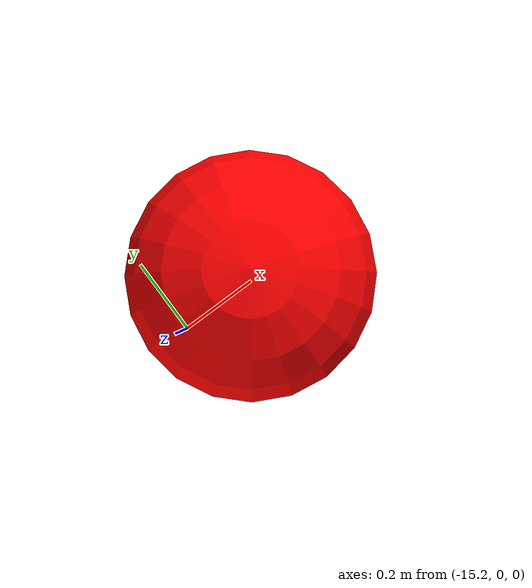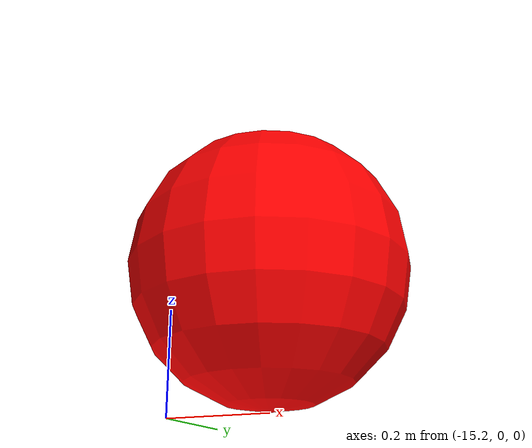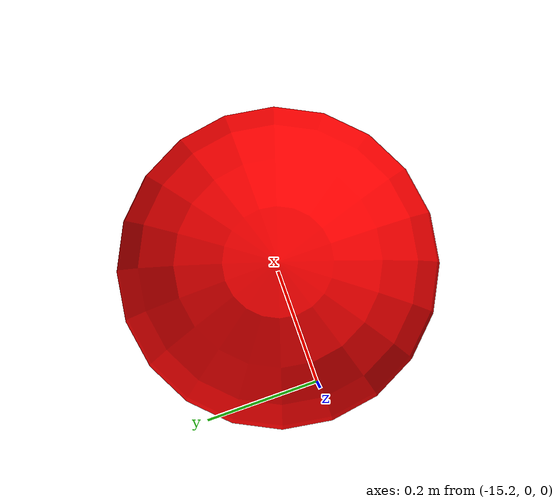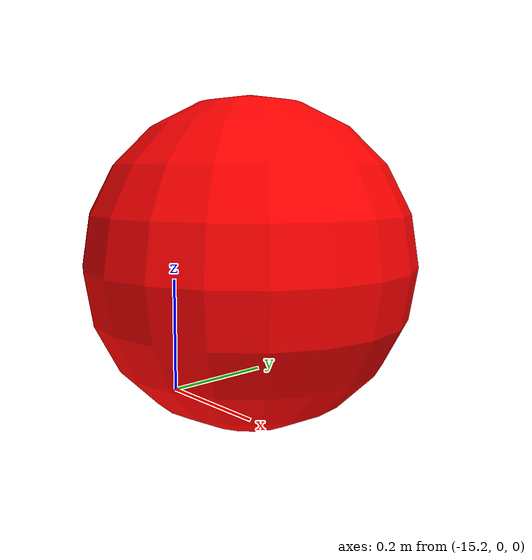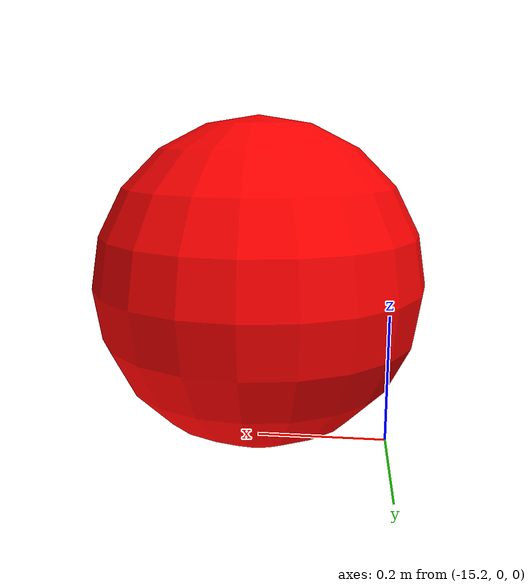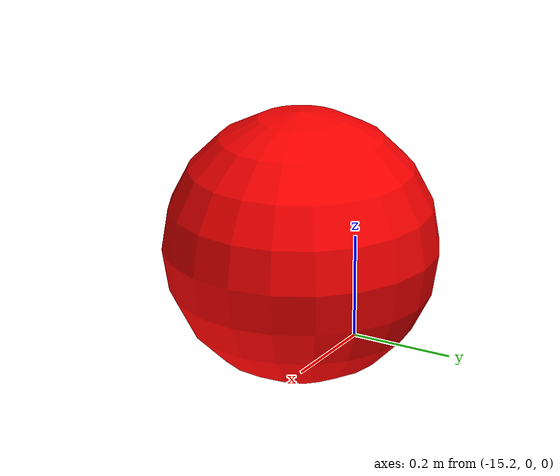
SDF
<?xml version="1.0" ?>
<sdf version="1.6">
  <model name="goal_marker_2">
    <pose>-15 0 0.25 0 0 0</pose> <!-- Position of the goal -->
    <link name="link">
      <visual name="visual">
        <geometry>
          <sphere>
            <radius>0.25</radius> <!-- Size of the sphere -->
          </sphere>
        </geometry>
        <material>
          <ambient>1 0 0 1</ambient> <!-- Red color -->
          <diffuse>1 0 0 1</diffuse>
        </material>
      </visual>
    </link>
  </model>
</sdf>
